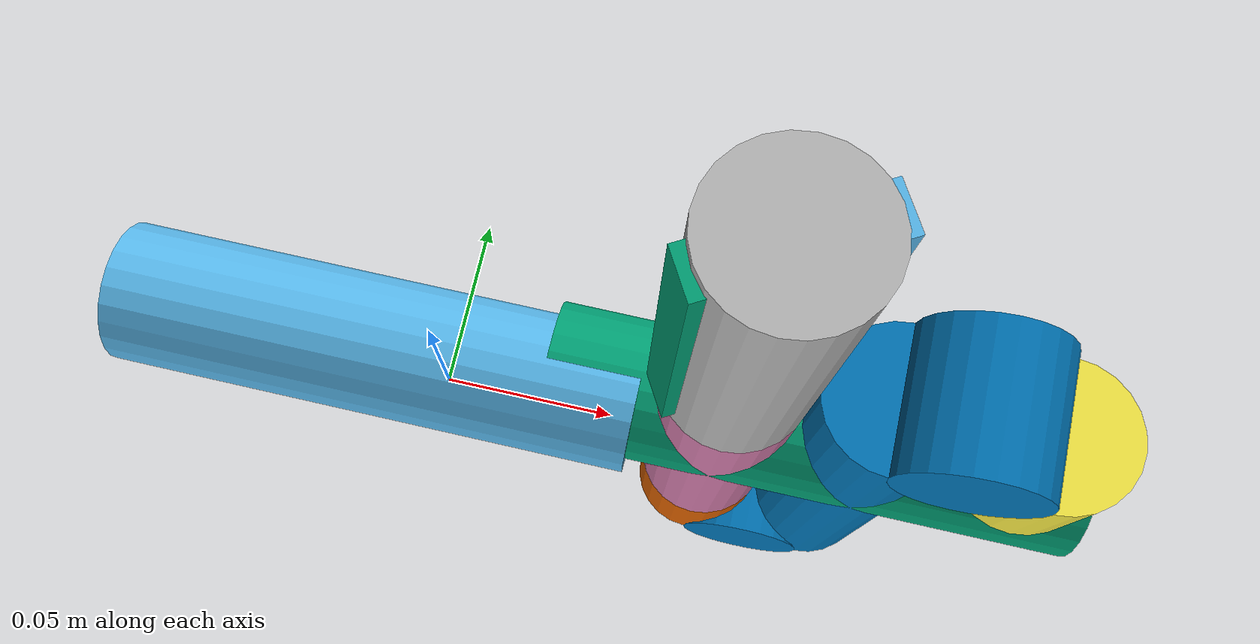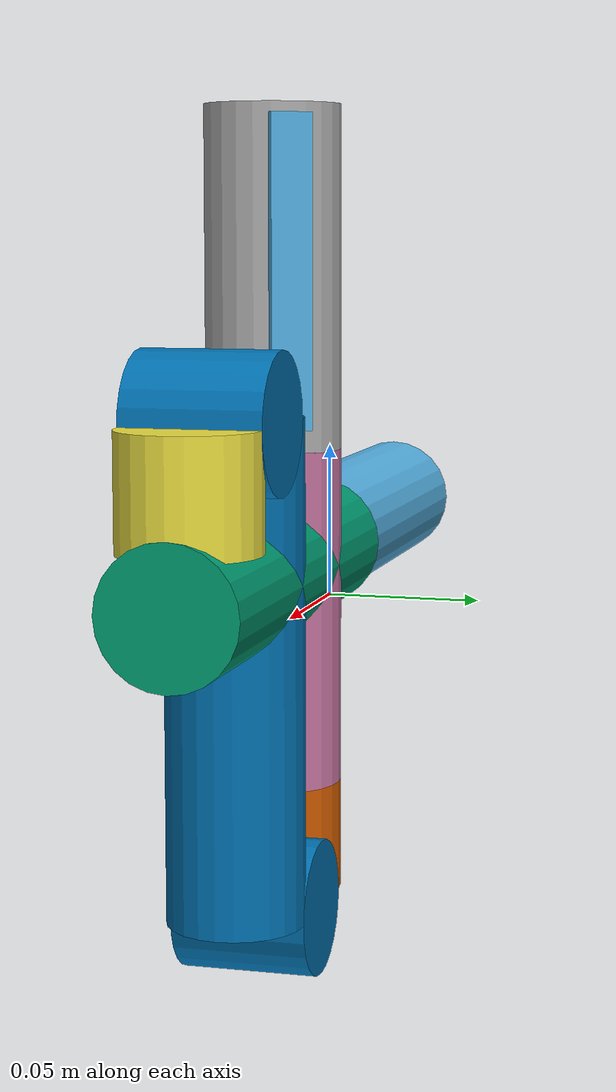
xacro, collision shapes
<?xml version="1.0"?>
<robot xmlns:xacro="http://www.ros.org/wiki/xacro" name="alpha_5">
    <xacro:arg name="initial_positions_file" default="initial_positions.yaml" />

    <!-- Import alpha_5 urdf file -->
    <xacro:include filename="$(find reach_description)/description/alpha_5/urdf/alpha_5_standard_jaws.urdf" />

    <!-- Import control_xacro -->
    <xacro:include filename="alpha_5.ros2_control.xacro" />

    <xacro:alpha_5_ros2_control name="FakeSystem" initial_positions_file="$(arg initial_positions_file)"/>

</robot>

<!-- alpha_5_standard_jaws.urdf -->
<!-- |    This document was autogenerated by xacro from alpha_5.config.xacro           | -->
<!-- |    EDITING THIS FILE BY HAND IS NOT RECOMMENDED                                 | -->
<robot name="alpha_5">
  <!-- create link fixed to the "world" -->
  <link name="world"/>
  <!-- links -->
  <!-- the distance from the mount center to the base_link is xyz="0.0374 0 0.0225" -->
  <link name="base_link">
    <visual>
      <geometry>
        <mesh filename="file:///home/ubuntu/ws_ros/install/reach_description/share/reach_description/meshes/alpha_5/RS1-1010.dae"/>
      </geometry>
      <origin rpy="0 0 0" xyz="0 0 0"/>
    </visual>
    <collision>
      <geometry>
        <cylinder length="0.150" radius="0.020"/>
      </geometry>
      <origin rpy="0 1.57075 0" xyz="-0.055 0 0"/>
    </collision>
    <inertial>
      <mass value="0.0001"/>
      <inertia ixx="0.0001" ixy="0" ixz="0" iyy="0.0001" iyz="0" izz="0.0001"/>
    </inertial>
  </link>
  <link name="m3_inline_link">
    <visual>
      <geometry>
        <mesh filename="file:///home/ubuntu/ws_ros/install/reach_description/share/reach_description/meshes/alpha_5/M3-INLINE.dae"/>
      </geometry>
      <origin rpy="0 0 0" xyz="0 0 0"/>
    </visual>
    <collision>
      <geometry>
        <cylinder length="0.150" radius="0.020"/>
      </geometry>
      <origin rpy="0 1.57075 0" xyz="-0.055 0 0"/>
    </collision>
    <inertial>
      <mass value="0.341"/>
      <origin xyz="-0.055 0 0"/>
      <inertia ixx="0.0000682" ixy="0" ixz="0" iyy="0.000673" iyz="0" izz="0.000673"/>
    </inertial>
  </link>
  <link name="m2_1_1_link">
    <visual>
      <geometry>
        <mesh filename="file:///home/ubuntu/ws_ros/install/reach_description/share/reach_description/meshes/alpha_5/M2-1-1.dae"/>
      </geometry>
      <origin rpy="0 0 0" xyz="0 0 0"/>
    </visual>
    <collision>
      <geometry>
        <cylinder length="0.033" radius="0.020"/>
      </geometry>
      <origin rpy="0 0 0" xyz="0 0 0.0165"/>
    </collision>
    <inertial>
      <mass value="0.194"/>
      <origin xyz="0 0 0.0165"/>
      <inertia ixx="0.000037" ixy="0" ixz="0" iyy="0.000037" iyz="0" izz="0.0000388"/>
    </inertial>
  </link>
  <link name="m2_link">
    <visual>
      <geometry>
        <mesh filename="file:///home/ubuntu/ws_ros/install/reach_description/share/reach_description/meshes/alpha_5/M2.dae"/>
      </geometry>
      <origin rpy="0 0 0" xyz="0 0 0"/>
    </visual>
    <collision>
      <geometry>
        <cylinder length="0.145" radius="0.020"/>
      </geometry>
      <origin rpy="0 0 0" xyz="-0.02 0 -0.0725"/>
    </collision>
    <collision>
      <geometry>
        <cylinder length="0.040" radius="0.020"/>
      </geometry>
      <origin rpy="1.5707 0 0" xyz="0 0 0"/>
    </collision>
    <collision>
      <geometry>
        <cylinder length="0.040" radius="0.020"/>
      </geometry>
      <origin rpy="1.5707 0 0" xyz="-0.040 0 -0.1453"/>
    </collision>
    <inertial>
      <mass value="0.429"/>
      <origin xyz="-0.02 0 -0.0725"/>
      <inertia ixx="0.0008907" ixy="0" ixz="0" iyy="0.0008907" iyz="0" izz="0.0000858"/>
    </inertial>
  </link>
  <link name="m2_1_3_link">
    <visual>
      <geometry>
        <mesh filename="file:///home/ubuntu/ws_ros/install/reach_description/share/reach_description/meshes/alpha_5/M2-1-3.dae"/>
      </geometry>
      <origin rpy="0 0 0" xyz="0 0 0"/>
    </visual>
    <collision>
      <geometry>
        <cylinder length="0.033" radius="0.020"/>
      </geometry>
      <origin rpy="0 0 0" xyz="0.02 0 0.0165"/>
    </collision>
    <inertial>
      <mass value="0.115"/>
      <origin xyz="0.02 0 0.0165"/>
      <inertia ixx="0.0000219" ixy="0" ixz="0" iyy="0.0000219" iyz="0" izz="0.000023"/>
    </inertial>
  </link>
  <link name="m1_link">
    <visual>
      <geometry>
        <mesh filename="file:///home/ubuntu/ws_ros/install/reach_description/share/reach_description/meshes/alpha_5/M1.dae"/>
      </geometry>
      <origin rpy="0 -1.5707 0" xyz="0 0 0"/>
    </visual>
    <collision>
      <geometry>
        <cylinder length="0.1" radius="0.020"/>
      </geometry>
      <origin rpy="0 0 0" xyz="0 0 0.05"/>
    </collision>
    <inertial>
      <mass value="0.200"/>
      <origin xyz="0 0 0.05"/>
      <inertia ixx="0.0001867" ixy="0" ixz="0" iyy="0.0001867" iyz="0" izz="0.00004"/>
    </inertial>
  </link>
  <link name="rs1_124_link">
    <visual>
      <geometry>
        <mesh filename="file:///home/ubuntu/ws_ros/install/reach_description/share/reach_description/meshes/alpha_5/RS1-124.dae"/>
      </geometry>
      <origin rpy="0 -1.5707 0" xyz="0 0 0"/>
    </visual>
    <collision>
      <geometry>
        <cylinder length="0.1" radius="0.020"/>
      </geometry>
      <origin rpy="0 0 0" xyz="0 0 0.05"/>
    </collision>
    <inertial>
      <mass value="0.0001"/>
      <inertia ixx="0.0001" ixy="0" ixz="0" iyy="0.0001" iyz="0" izz="0.0001"/>
    </inertial>
  </link>
  <link name="push_rod">
    <visual>
      <origin rpy="0 0 0" xyz="0 0 0"/>
      <geometry>
        <box size="0.001 0.001 0.001"/>
      </geometry>
      <material name="transparent">
        <color rgba="0 0 0 0"/>
      </material>
    </visual>
    <inertial>
      <mass value="0.0001"/>
      <inertia ixx="0.0001" ixy="0" ixz="0" iyy="0.0001" iyz="0" izz="0.0001"/>
    </inertial>
  </link>
  <!-- joints -->
  <joint name="base_joint" type="fixed">
    <origin rpy="0 0 0" xyz="0.0374 0 0.0225"/>
    <parent link="world"/>
    <child link="base_link"/>
  </joint>
  <joint name="mount_joint" type="fixed">
    <parent link="base_link"/>
    <child link="m3_inline_link"/>
    <origin rpy="0 0 0" xyz="0.124 0.004 0"/>
  </joint>
  <joint name="axis_e" type="revolute">
    <parent link="m3_inline_link"/>
    <child link="m2_1_1_link"/>
    <origin xyz="0 0 0.014"/>
    <axis xyz="0 0 1"/>
    <limit effort="9.0" lower="0.0" upper="6.1" velocity="0.5"/>
  </joint>
  <joint name="axis_d" type="revolute">
    <parent link="m2_1_1_link"/>
    <child link="m2_link"/>
    <origin xyz="-0.02 0 0.033"/>
    <axis xyz="0 1 0"/>
    <limit effort="9.0" lower="-3.49" upper="3.49" velocity="0.5"/>
  </joint>
  <joint name="axis_c" type="revolute">
    <parent link="m2_link"/>
    <child link="m2_1_3_link"/>
    <origin rpy="0 0 3.14159" xyz="-0.04 0 -0.1453"/>
    <axis xyz="0 1 0"/>
    <limit effort="9.0" lower="0.0" upper="3.22" velocity="0.5"/>
  </joint>
  <joint name="axis_b" type="revolute">
    <parent link="m2_1_3_link"/>
    <child link="m1_link"/>
    <origin rpy="0 0 2.09439" xyz="0.02 0 0.033"/>
    <axis xyz="0 0 -1"/>
    <limit effort="9.0" lower="0.0" upper="3.22" velocity="0.5"/>
  </joint>
  <joint name="tcp_base_joint" type="fixed">
    <origin rpy="0 0 0" xyz="0 0 0.09975"/>
    <parent link="m1_link"/>
    <child link="rs1_124_link"/>
  </joint>
  <joint name="axis_a" type="prismatic">
    <origin rpy="0 0 0" xyz="0 0 0.009"/>
    <parent link="rs1_124_link"/>
    <child link="push_rod"/>
    <axis xyz="0 0 1"/>
    <limit effort="10" lower="0.0" upper="0.015" velocity="10"/>
  </joint>
  <!-- links -->
  <link name="rs1_130_link">
    <visual>
      <geometry>
        <mesh filename="file:///home/ubuntu/ws_ros/install/reach_description/share/reach_description/meshes/alpha_5/end_effectors/RS1-130.dae"/>
      </geometry>
      <origin rpy="0 0 0" xyz="0 0 0"/>
    </visual>
    <collision>
      <geometry>
        <box size="0.012 0.03 0.09"/>
      </geometry>
      <origin rpy="0 0 0" xyz="0.0 -0.008 0.045"/>
    </collision>
    <inertial>
      <mass value="0.055"/>
      <origin rpy="0 0 0" xyz="0.0 -0.008 0.045"/>
      <inertia ixx="0.00004125" ixy="0" ixz="0" iyy="0.000037785" iyz="0" izz="0.000004785"/>
    </inertial>
  </link>
  <link name="rs1_139_link">
    <visual>
      <geometry>
        <mesh filename="file:///home/ubuntu/ws_ros/install/reach_description/share/reach_description/meshes/alpha_5/end_effectors/RS1-139.dae"/>
      </geometry>
      <origin rpy="0 0 0" xyz="0 0 0"/>
    </visual>
    <collision>
      <geometry>
        <box size="0.012 0.03 0.09"/>
      </geometry>
      <origin rpy="0 0 0" xyz="0.0 0.008 0.045"/>
    </collision>
    <inertial>
      <mass value="0.055"/>
      <origin rpy="0 0 0" xyz="0.0 0.008 0.045"/>
      <inertia ixx="0.00004125" ixy="0" ixz="0" iyy="0.000037785" iyz="0" izz="0.000004785"/>
    </inertial>
  </link>
  <!-- define a tcp link for planning/control purposes -->
  <link name="tcp">
    <inertial>
      <mass value="0.0001"/>
      <inertia ixx="0.0001" ixy="0" ixz="0" iyy="0.0001" iyz="0" izz="0.0001"/>
    </inertial>
  </link>
  <!-- joints -->
  <joint name="rs1_130_joint" type="revolute">
    <origin rpy="0 0 0" xyz="0 0.0155 0.0069"/>
    <parent link="rs1_124_link"/>
    <child link="rs1_130_link"/>
    <axis xyz="-1 0 0"/>
    <limit effort="10" lower="0" upper="0.5" velocity="10"/>
    <mimic joint="axis_a" multiplier="51" offset="0"/>
  </joint>
  <joint name="rs1_139_joint" type="revolute">
    <origin rpy="0 0 0" xyz="0 -0.0155 0.0069"/>
    <parent link="rs1_124_link"/>
    <child link="rs1_139_link"/>
    <axis xyz="1 0 0"/>
    <limit effort="10" lower="0" upper="0.5" velocity="10"/>
    <mimic joint="rs1_130_joint" multiplier="1" offset="0"/>
  </joint>
  <joint name="tcp_joint" type="fixed">
    <origin rpy="0 -1.5707963267948966 0" xyz="0 0 0.04"/>
    <parent link="rs1_124_link"/>
    <child link="tcp"/>
  </joint>
  <ros2_control name="ReachAlpha5" type="system">
    <hardware>
      <plugin>mock_components/GenericSystem</plugin>
    </hardware>
    <!-- joints -->
    <!-- we need to include the device ID parameter for ros2_control -->
    <joint name="axis_a">
      <param name="device_id">1</param>
      <command_interface name="position">
        <param name="min">0.0</param>
        <param name="max">0.015</param>
      </command_interface>
      <command_interface name="velocity">
        <param name="min">-0.003</param>
        <param name="max">0.003</param>
      </command_interface>
      <command_interface name="effort"/>
      <state_interface name="position">
        <param name="initial_value">0</param>
      </state_interface>
      <state_interface name="velocity">
        <param name="initial_value">0.0</param>
      </state_interface>
      <state_interface name="effort">
        <param name="initial_value">0.0</param>
      </state_interface>
    </joint>
    <joint name="axis_b">
      <param name="device_id">2</param>
      <command_interface name="position">
        <param name="min">0.0</param>
        <param name="max">3.22</param>
      </command_interface>
      <command_interface name="velocity">
        <param name="min">-0.8726646</param>
        <param name="max">0.8726646</param>
      </command_interface>
      <command_interface name="effort"/>
      <state_interface name="position">
        <param name="initial_value">0</param>
      </state_interface>
      <state_interface name="velocity">
        <param name="initial_value">0.0</param>
      </state_interface>
      <state_interface name="effort">
        <param name="initial_value">0.0</param>
      </state_interface>
    </joint>
    <joint name="axis_c">
      <param name="device_id">3</param>
      <command_interface name="position">
        <param name="min">0.0</param>
        <param name="max">3.22</param>
      </command_interface>
      <command_interface name="velocity">
        <param name="min">-0.5235988</param>
        <param name="max">0.5235988</param>
      </command_interface>
      <command_interface name="effort"/>
      <state_interface name="position">
        <param name="initial_value">0</param>
      </state_interface>
      <state_interface name="velocity">
        <param name="initial_value">0.0</param>
      </state_interface>
      <state_interface name="effort">
        <param name="initial_value">0.0</param>
      </state_interface>
    </joint>
    <joint name="axis_d">
      <param name="device_id">4</param>
      <command_interface name="position">
        <param name="min">-3.49</param>
        <param name="max">3.49</param>
      </command_interface>
      <command_interface name="velocity">
        <param name="min">-0.5235988</param>
        <param name="max">0.5235988</param>
      </command_interface>
      <command_interface name="effort"/>
      <state_interface name="position">
        <param name="initial_value">1.5746</param>
      </state_interface>
      <state_interface name="velocity">
        <param name="initial_value">0.0</param>
      </state_interface>
      <state_interface name="effort">
        <param name="initial_value">0.0</param>
      </state_interface>
    </joint>
    <joint name="axis_e">
      <param name="device_id">5</param>
      <command_interface name="position">
        <param name="min">0.0</param>
        <param name="max">6.1</param>
      </command_interface>
      <command_interface name="velocity">
        <param name="min">-0.5235988</param>
        <param name="max">0.5235988</param>
      </command_interface>
      <command_interface name="effort"/>
      <state_interface name="position">
        <param name="initial_value">0</param>
      </state_interface>
      <state_interface name="velocity">
        <param name="initial_value">0.0</param>
      </state_interface>
      <state_interface name="effort">
        <param name="initial_value">0.0</param>
      </state_interface>
    </joint>
  </ros2_control>
</robot>
